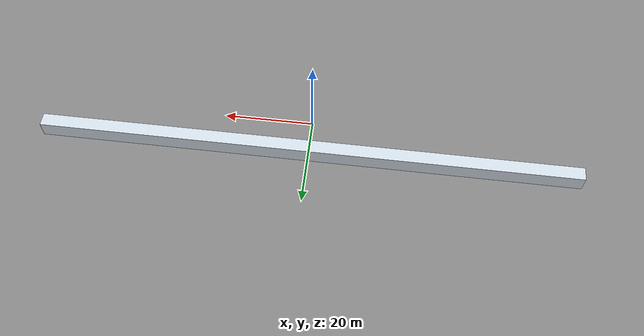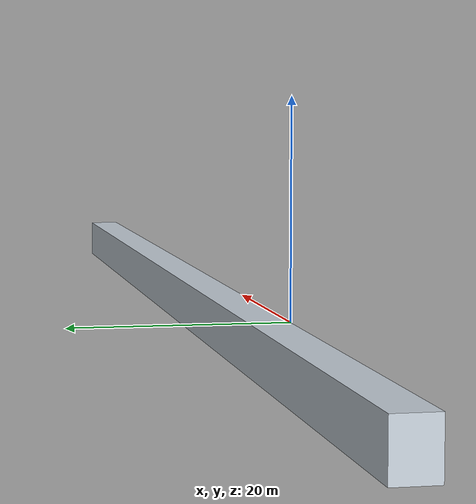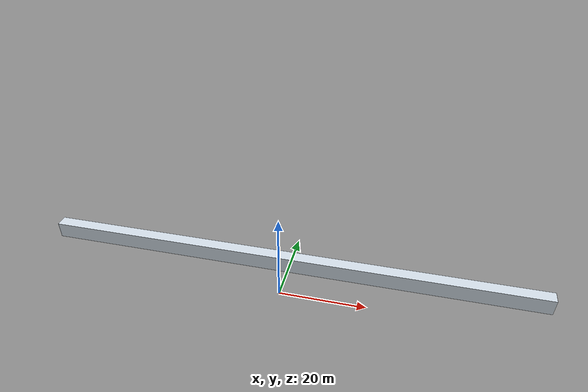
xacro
<?xml version="1.0"?>
<robot name="metro_train" xmlns:xacro="http://www.ros.org/wiki/xacro">
  <xacro:property name="length" value="120.0"/>
  <xacro:property name="width" value="3.0"/>
  <xacro:property name="height" value="3.8"/>
  <xacro:property name="mass" value="30000.0"/>
  <xacro:property name="body_y" value="8.65"/>
  <xacro:property name="body_z" value="2.30"/>

  <link name="base_link"/>

  <link name="train_body">
    <inertial>
      <origin xyz="0 0 0" rpy="0 0 0"/>
      <mass value="${mass}"/>
      <inertia ixx="58600.0" ixy="0" ixz="0"
               iyy="36036100.0" iyz="0"
               izz="36022500.0"/>
    </inertial>
    <visual>
      <origin xyz="0 0 0" rpy="0 0 0"/>
      <geometry>
        <box size="${length} ${width} ${height}"/>
      </geometry>
      <material name="train_grey">
        <color rgba="0.80 0.84 0.88 1.0"/>
      </material>
    </visual>
    <collision>
      <origin xyz="0 0 0" rpy="0 0 0"/>
      <geometry>
        <box size="${length} ${width} ${height}"/>
      </geometry>
    </collision>
  </link>

  <!-- Visual-only longitudinal joint.  The Gazebo plugin drives the SDF joint;
       this URDF joint exists so the tree is complete for ROS tooling. -->
  <joint name="train_longitudinal" type="prismatic">
    <parent link="base_link"/>
    <child link="train_body"/>
    <origin xyz="0 ${body_y} ${body_z}" rpy="0 0 0"/>
    <axis xyz="1 0 0"/>
    <limit lower="-200.0" upper="200.0" effort="200000.0" velocity="20.0"/>
  </joint>
</robot>
